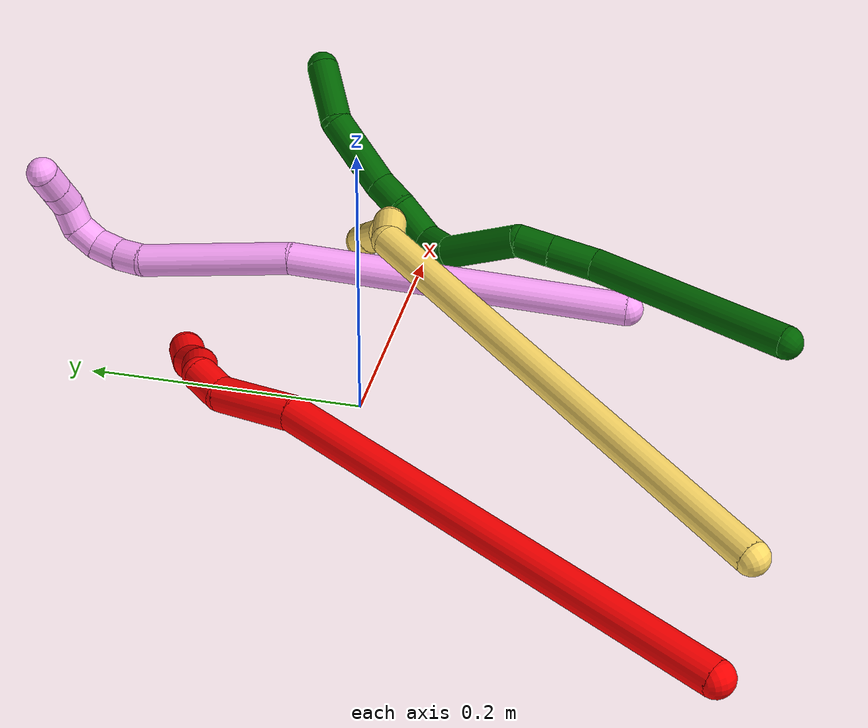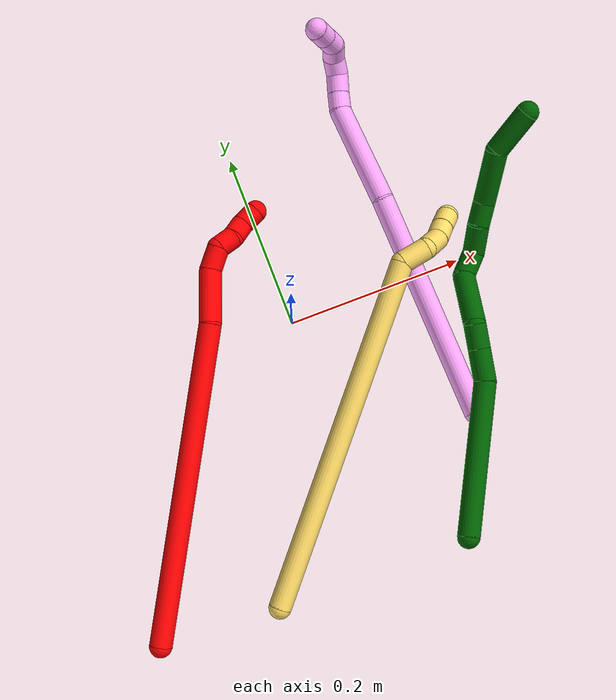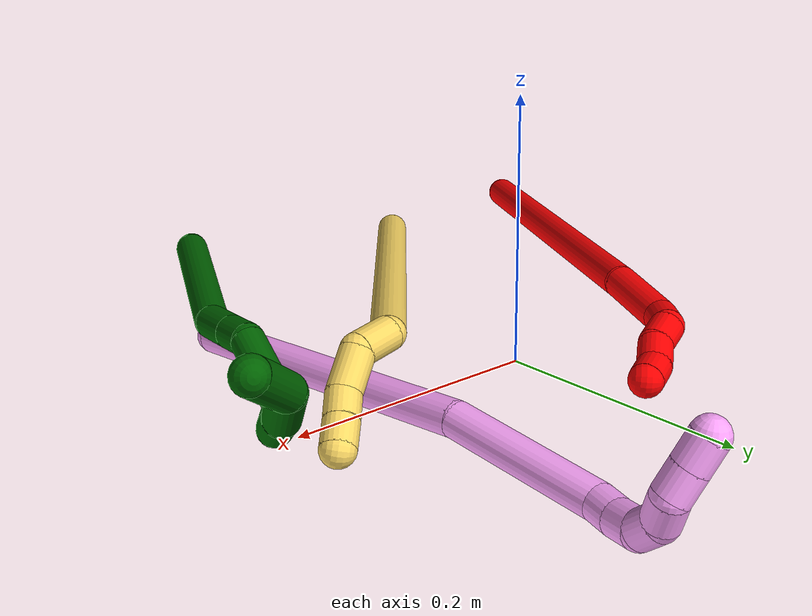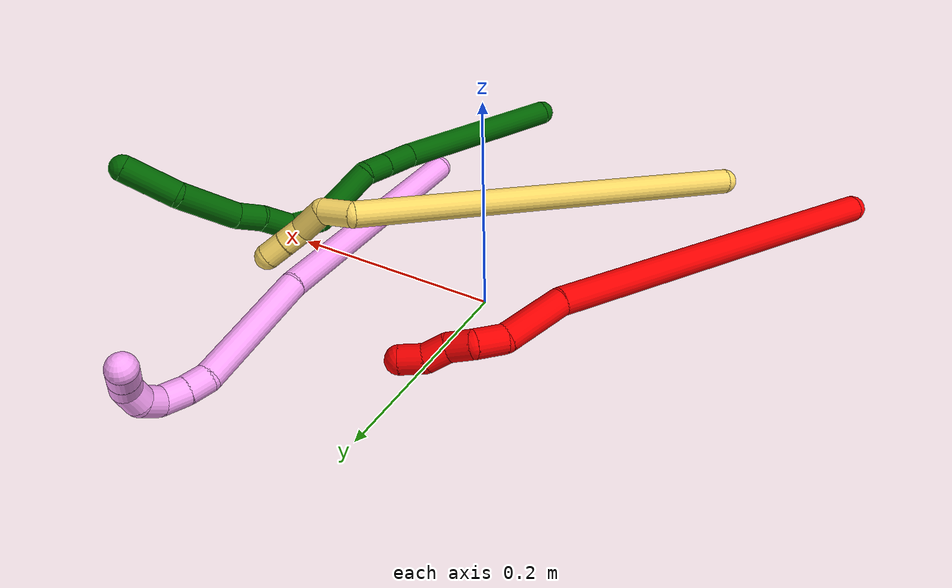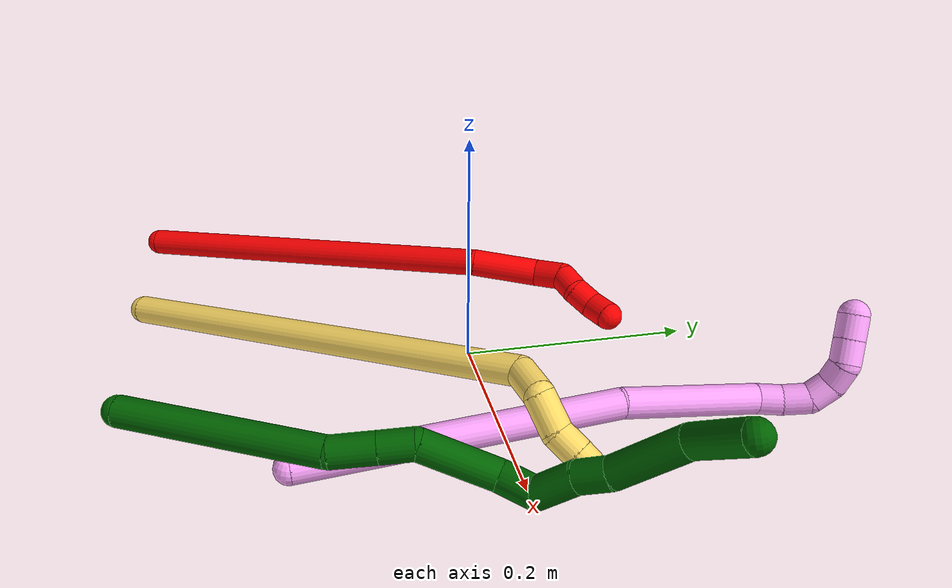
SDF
<sdf version="1.7">
 <world name="default">
  <model name="2">
   <static>0</static>
   <link name="2">
    <collision name="collision-cylinder-e_1_1_4">
     <pose>-0.074435 0.147826 0.055371 -1.2124 -0.440621 0.308054</pose>
     <geometry><cylinder><radius>0.0125</radius><length>0.349051</length></cylinder></geometry>
     <surface>
      <friction><ode><mu>1.16</mu><mu2>1.16</mu2><slip1>0</slip1><slip2>0</slip2></ode></friction>
      <contact><ode><kp>1e+06</kp><kd>1</kd><max_vel>0</max_vel><min_depth>0.001</min_depth></ode></contact>
     </surface>
    </collision>
    <visual name="visual-cylinder-e_1_1_4">
     <pose>-0.074435 0.147826 0.055371 -1.2124 -0.440621 0.308054</pose>
     <geometry><cylinder><radius>0.0125</radius><length>0.349051</length></cylinder></geometry>
     <material><ambient>1 0 0 1</ambient></material>
    </visual>
    <collision name="collision-cylinder-e_2_4_5">
     <pose>-0.165278 0.316811 0.125095 -0.974781 -0.570533 0.308416</pose>
     <geometry><cylinder><radius>0.0125</radius><length>0.060759</length></cylinder></geometry>
     <surface>
      <friction><ode><mu>1.16</mu><mu2>1.16</mu2><slip1>0</slip1><slip2>0</slip2></ode></friction>
      <contact><ode><kp>1e+06</kp><kd>1</kd><max_vel>0</max_vel><min_depth>0.001</min_depth></ode></contact>
     </surface>
    </collision>
    <visual name="visual-cylinder-e_2_4_5">
     <pose>-0.165278 0.316811 0.125095 -0.974781 -0.570533 0.308416</pose>
     <geometry><cylinder><radius>0.0125</radius><length>0.060759</length></cylinder></geometry>
     <material><ambient>1 0 0 1</ambient></material>
    </visual>
    <collision name="collision-cylinder-e_3_5_6">
     <pose>-0.187606 0.349729 0.141307 -1.41392 -0.461476 0.396106</pose>
     <geometry><cylinder><radius>0.0125</radius><length>0.026592</length></cylinder></geometry>
     <surface>
      <friction><ode><mu>1.16</mu><mu2>1.16</mu2><slip1>0</slip1><slip2>0</slip2></ode></friction>
      <contact><ode><kp>1e+06</kp><kd>1</kd><max_vel>0</max_vel><min_depth>0.001</min_depth></ode></contact>
     </surface>
    </collision>
    <visual name="visual-cylinder-e_3_5_6">
     <pose>-0.187606 0.349729 0.141307 -1.41392 -0.461476 0.396106</pose>
     <geometry><cylinder><radius>0.0125</radius><length>0.026592</length></cylinder></geometry>
     <material><ambient>1 0 0 1</ambient></material>
    </visual>
    <collision name="collision-cylinder-e_4_6_7">
     <pose>-0.201305 0.367821 0.139267 -2.12284 -0.807905 1.30646</pose>
     <geometry><cylinder><radius>0.0125</radius><length>0.021525</length></cylinder></geometry>
     <surface>
      <friction><ode><mu>1.16</mu><mu2>1.16</mu2><slip1>0</slip1><slip2>0</slip2></ode></friction>
      <contact><ode><kp>1e+06</kp><kd>1</kd><max_vel>0</max_vel><min_depth>0.001</min_depth></ode></contact>
     </surface>
    </collision>
    <visual name="visual-cylinder-e_4_6_7">
     <pose>-0.201305 0.367821 0.139267 -2.12284 -0.807905 1.30646</pose>
     <geometry><cylinder><radius>0.0125</radius><length>0.021525</length></cylinder></geometry>
     <material><ambient>1 0 0 1</ambient></material>
    </visual>
    <collision name="collision-cylinder-e_5_7_8">
     <pose>-0.217928 0.379831 0.135124 -1.61357 -0.999604 1.03601</pose>
     <geometry><cylinder><radius>0.0125</radius><length>0.021024</length></cylinder></geometry>
     <surface>
      <friction><ode><mu>1.16</mu><mu2>1.16</mu2><slip1>0</slip1><slip2>0</slip2></ode></friction>
      <contact><ode><kp>1e+06</kp><kd>1</kd><max_vel>0</max_vel><min_depth>0.001</min_depth></ode></contact>
     </surface>
    </collision>
    <visual name="visual-cylinder-e_5_7_8">
     <pose>-0.217928 0.379831 0.135124 -1.61357 -0.999604 1.03601</pose>
     <geometry><cylinder><radius>0.0125</radius><length>0.021024</length></cylinder></geometry>
     <material><ambient>1 0 0 1</ambient></material>
    </visual>
    <collision name="collision-cylinder-e_6_8_2">
     <pose>-0.233135 0.393361 0.131944 -1.92869 -0.649242 0.903396</pose>
     <geometry><cylinder><radius>0.0125</radius><length>0.021049</length></cylinder></geometry>
     <surface>
      <friction><ode><mu>1.16</mu><mu2>1.16</mu2><slip1>0</slip1><slip2>0</slip2></ode></friction>
      <contact><ode><kp>1e+06</kp><kd>1</kd><max_vel>0</max_vel><min_depth>0.001</min_depth></ode></contact>
     </surface>
    </collision>
    <visual name="visual-cylinder-e_6_8_2">
     <pose>-0.233135 0.393361 0.131944 -1.92869 -0.649242 0.903396</pose>
     <geometry><cylinder><radius>0.0125</radius><length>0.021049</length></cylinder></geometry>
     <material><ambient>1 0 0 1</ambient></material>
    </visual>
    <collision name="collision-sphere-2">
     <pose>-0.239498 0.401213 0.129007 0 -0 0</pose>
     <geometry><sphere><radius>0.0125</radius></sphere></geometry>
     <surface>
      <friction><ode><mu>1.16</mu><mu2>1.16</mu2><slip1>0</slip1><slip2>0</slip2></ode></friction>
      <contact><ode><kp>1e+06</kp><kd>1</kd><max_vel>0</max_vel><min_depth>0.001</min_depth></ode></contact>
     </surface>
    </collision>
    <visual name="visual-sphere-2">
     <pose>-0.239498 0.401213 0.129007 0 -0 0</pose>
     <geometry><sphere><radius>0.0125</radius></sphere></geometry>
     <material><ambient>1 0 0 1</ambient></material>
    </visual>
    <collision name="collision-sphere-4">
     <pose>-0.148871 0.295652 0.110742 0 -0 0</pose>
     <geometry><sphere><radius>0.0125</radius></sphere></geometry>
     <surface>
      <friction><ode><mu>1.16</mu><mu2>1.16</mu2><slip1>0</slip1><slip2>0</slip2></ode></friction>
      <contact><ode><kp>1e+06</kp><kd>1</kd><max_vel>0</max_vel><min_depth>0.001</min_depth></ode></contact>
     </surface>
    </collision>
    <visual name="visual-sphere-4">
     <pose>-0.148871 0.295652 0.110742 0 -0 0</pose>
     <geometry><sphere><radius>0.0125</radius></sphere></geometry>
     <material><ambient>1 0 0 1</ambient></material>
    </visual>
    <collision name="collision-sphere-1">
     <geometry><sphere><radius>0.0125</radius></sphere></geometry>
     <surface>
      <friction><ode><mu>1.16</mu><mu2>1.16</mu2><slip1>0</slip1><slip2>0</slip2></ode></friction>
      <contact><ode><kp>1e+06</kp><kd>1</kd><max_vel>0</max_vel><min_depth>0.001</min_depth></ode></contact>
     </surface>
    </collision>
    <visual name="visual-sphere-1">
     <geometry><sphere><radius>0.0125</radius></sphere></geometry>
     <material><ambient>1 0 0 1</ambient></material>
    </visual>
    <collision name="collision-sphere-8">
     <pose>-0.226772 0.385509 0.134881 0 -0 0</pose>
     <geometry><sphere><radius>0.0125</radius></sphere></geometry>
     <surface>
      <friction><ode><mu>1.16</mu><mu2>1.16</mu2><slip1>0</slip1><slip2>0</slip2></ode></friction>
      <contact><ode><kp>1e+06</kp><kd>1</kd><max_vel>0</max_vel><min_depth>0.001</min_depth></ode></contact>
     </surface>
    </collision>
    <visual name="visual-sphere-8">
     <pose>-0.226772 0.385509 0.134881 0 -0 0</pose>
     <geometry><sphere><radius>0.0125</radius></sphere></geometry>
     <material><ambient>1 0 0 1</ambient></material>
    </visual>
    <collision name="collision-sphere-5">
     <pose>-0.181685 0.33797 0.139447 0 -0 0</pose>
     <geometry><sphere><radius>0.0125</radius></sphere></geometry>
     <surface>
      <friction><ode><mu>1.16</mu><mu2>1.16</mu2><slip1>0</slip1><slip2>0</slip2></ode></friction>
      <contact><ode><kp>1e+06</kp><kd>1</kd><max_vel>0</max_vel><min_depth>0.001</min_depth></ode></contact>
     </surface>
    </collision>
    <visual name="visual-sphere-5">
     <pose>-0.181685 0.33797 0.139447 0 -0 0</pose>
     <geometry><sphere><radius>0.0125</radius></sphere></geometry>
     <material><ambient>1 0 0 1</ambient></material>
    </visual>
    <collision name="collision-sphere-6">
     <pose>-0.193526 0.361488 0.143167 0 -0 0</pose>
     <geometry><sphere><radius>0.0125</radius></sphere></geometry>
     <surface>
      <friction><ode><mu>1.16</mu><mu2>1.16</mu2><slip1>0</slip1><slip2>0</slip2></ode></friction>
      <contact><ode><kp>1e+06</kp><kd>1</kd><max_vel>0</max_vel><min_depth>0.001</min_depth></ode></contact>
     </surface>
    </collision>
    <visual name="visual-sphere-6">
     <pose>-0.193526 0.361488 0.143167 0 -0 0</pose>
     <geometry><sphere><radius>0.0125</radius></sphere></geometry>
     <material><ambient>1 0 0 1</ambient></material>
    </visual>
    <collision name="collision-sphere-7">
     <pose>-0.209085 0.374153 0.135367 0 -0 0</pose>
     <geometry><sphere><radius>0.0125</radius></sphere></geometry>
     <surface>
      <friction><ode><mu>1.16</mu><mu2>1.16</mu2><slip1>0</slip1><slip2>0</slip2></ode></friction>
      <contact><ode><kp>1e+06</kp><kd>1</kd><max_vel>0</max_vel><min_depth>0.001</min_depth></ode></contact>
     </surface>
    </collision>
    <visual name="visual-sphere-7">
     <pose>-0.209085 0.374153 0.135367 0 -0 0</pose>
     <geometry><sphere><radius>0.0125</radius></sphere></geometry>
     <material><ambient>1 0 0 1</ambient></material>
    </visual>
    <inertial>
     <pose>-0.10967 0.208662 0.078603 0 -0 0</pose>
     <mass>0.5</mass>
     <inertia>
      <ixx>0.004053</ixx>
      <ixy>0</ixy>
      <ixz>0</ixz>
      <iyy>0.002653</iyy>
      <iyz>0</iyz>
      <izz>-0.00149</izz>
     </inertia>
    </inertial>
   </link>
   <pose>-0.255935 -0.279669 0.023231 1.6596 -1.01049 -2.48476</pose>
  </model>
  <model name="4">
   <static>0</static>
   <link name="4">
    <collision name="collision-cylinder-e_1_1_4">
     <pose>0.003866 0.126649 0.025526 -1.37191 0.029917 -0.02449</pose>
     <geometry><cylinder><radius>0.0125</radius><length>0.258508</length></cylinder></geometry>
     <surface>
      <friction><ode><mu>1.16</mu><mu2>1.16</mu2><slip1>0</slip1><slip2>0</slip2></ode></friction>
      <contact><ode><kp>1e+06</kp><kd>1</kd><max_vel>0</max_vel><min_depth>0.001</min_depth></ode></contact>
     </surface>
    </collision>
    <visual name="visual-cylinder-e_1_1_4">
     <pose>0.003866 0.126649 0.025526 -1.37191 0.029917 -0.02449</pose>
     <geometry><cylinder><radius>0.0125</radius><length>0.258508</length></cylinder></geometry>
     <material><ambient>1 0.65098 0.996078 1</ambient></material>
    </visual>
    <collision name="collision-cylinder-e_2_4_5">
     <pose>0.008358 0.312433 0.051976 -1.55517 0.010567 -0.010403</pose>
     <geometry><cylinder><radius>0.0125</radius><length>0.11829</length></cylinder></geometry>
     <surface>
      <friction><ode><mu>1.16</mu><mu2>1.16</mu2><slip1>0</slip1><slip2>0</slip2></ode></friction>
      <contact><ode><kp>1e+06</kp><kd>1</kd><max_vel>0</max_vel><min_depth>0.001</min_depth></ode></contact>
     </surface>
    </collision>
    <visual name="visual-cylinder-e_2_4_5">
     <pose>0.008358 0.312433 0.051976 -1.55517 0.010567 -0.010403</pose>
     <geometry><cylinder><radius>0.0125</radius><length>0.11829</length></cylinder></geometry>
     <material><ambient>1 0.65098 0.996078 1</ambient></material>
    </visual>
    <collision name="collision-cylinder-e_3_5_6">
     <pose>0.012229 0.381315 0.053754 -1.48337 0.32032 -0.293874</pose>
     <geometry><cylinder><radius>0.0125</radius><length>0.020618</length></cylinder></geometry>
     <surface>
      <friction><ode><mu>1.16</mu><mu2>1.16</mu2><slip1>0</slip1><slip2>0</slip2></ode></friction>
      <contact><ode><kp>1e+06</kp><kd>1</kd><max_vel>0</max_vel><min_depth>0.001</min_depth></ode></contact>
     </surface>
    </collision>
    <visual name="visual-cylinder-e_3_5_6">
     <pose>0.012229 0.381315 0.053754 -1.48337 0.32032 -0.293874</pose>
     <geometry><cylinder><radius>0.0125</radius><length>0.020618</length></cylinder></geometry>
     <material><ambient>1 0.65098 0.996078 1</ambient></material>
    </visual>
    <collision name="collision-cylinder-e_4_6_7">
     <pose>0.019523 0.401189 0.05723 -1.31746 0.369221 -0.287107</pose>
     <geometry><cylinder><radius>0.0125</radius><length>0.022433</length></cylinder></geometry>
     <surface>
      <friction><ode><mu>1.16</mu><mu2>1.16</mu2><slip1>0</slip1><slip2>0</slip2></ode></friction>
      <contact><ode><kp>1e+06</kp><kd>1</kd><max_vel>0</max_vel><min_depth>0.001</min_depth></ode></contact>
     </surface>
    </collision>
    <visual name="visual-cylinder-e_4_6_7">
     <pose>0.019523 0.401189 0.05723 -1.31746 0.369221 -0.287107</pose>
     <geometry><cylinder><radius>0.0125</radius><length>0.022433</length></cylinder></geometry>
     <material><ambient>1 0.65098 0.996078 1</ambient></material>
    </visual>
    <collision name="collision-cylinder-e_5_7_8">
     <pose>0.025282 0.418242 0.06694 -0.773861 0.171002 -0.06982</pose>
     <geometry><cylinder><radius>0.0125</radius><length>0.020114</length></cylinder></geometry>
     <surface>
      <friction><ode><mu>1.16</mu><mu2>1.16</mu2><slip1>0</slip1><slip2>0</slip2></ode></friction>
      <contact><ode><kp>1e+06</kp><kd>1</kd><max_vel>0</max_vel><min_depth>0.001</min_depth></ode></contact>
     </surface>
    </collision>
    <visual name="visual-cylinder-e_5_7_8">
     <pose>0.025282 0.418242 0.06694 -0.773861 0.171002 -0.06982</pose>
     <geometry><cylinder><radius>0.0125</radius><length>0.020114</length></cylinder></geometry>
     <material><ambient>1 0.65098 0.996078 1</ambient></material>
    </visual>
    <collision name="collision-cylinder-e_6_8_9">
     <pose>0.028938 0.42747 0.08358 -0.23644 0.195409 -0.023283</pose>
     <geometry><cylinder><radius>0.0125</radius><length>0.020033</length></cylinder></geometry>
     <surface>
      <friction><ode><mu>1.16</mu><mu2>1.16</mu2><slip1>0</slip1><slip2>0</slip2></ode></friction>
      <contact><ode><kp>1e+06</kp><kd>1</kd><max_vel>0</max_vel><min_depth>0.001</min_depth></ode></contact>
     </surface>
    </collision>
    <visual name="visual-cylinder-e_6_8_9">
     <pose>0.028938 0.42747 0.08358 -0.23644 0.195409 -0.023283</pose>
     <geometry><cylinder><radius>0.0125</radius><length>0.020033</length></cylinder></geometry>
     <material><ambient>1 0.65098 0.996078 1</ambient></material>
    </visual>
    <collision name="collision-cylinder-e_7_9_10">
     <pose>0.027611 0.43153 0.102419 -0.187176 -0.333339 0.031578</pose>
     <geometry><cylinder><radius>0.0125</radius><length>0.020003</length></cylinder></geometry>
     <surface>
      <friction><ode><mu>1.16</mu><mu2>1.16</mu2><slip1>0</slip1><slip2>0</slip2></ode></friction>
      <contact><ode><kp>1e+06</kp><kd>1</kd><max_vel>0</max_vel><min_depth>0.001</min_depth></ode></contact>
     </surface>
    </collision>
    <visual name="visual-cylinder-e_7_9_10">
     <pose>0.027611 0.43153 0.102419 -0.187176 -0.333339 0.031578</pose>
     <geometry><cylinder><radius>0.0125</radius><length>0.020003</length></cylinder></geometry>
     <material><ambient>1 0.65098 0.996078 1</ambient></material>
    </visual>
    <collision name="collision-cylinder-e_8_10_2">
     <pose>0.021098 0.435046 0.121001 -0.186802 -0.329932 0.031187</pose>
     <geometry><cylinder><radius>0.0125</radius><length>0.020002</length></cylinder></geometry>
     <surface>
      <friction><ode><mu>1.16</mu><mu2>1.16</mu2><slip1>0</slip1><slip2>0</slip2></ode></friction>
      <contact><ode><kp>1e+06</kp><kd>1</kd><max_vel>0</max_vel><min_depth>0.001</min_depth></ode></contact>
     </surface>
    </collision>
    <visual name="visual-cylinder-e_8_10_2">
     <pose>0.021098 0.435046 0.121001 -0.186802 -0.329932 0.031187</pose>
     <geometry><cylinder><radius>0.0125</radius><length>0.020002</length></cylinder></geometry>
     <material><ambient>1 0.65098 0.996078 1</ambient></material>
    </visual>
    <collision name="collision-sphere-2">
     <pose>0.017858 0.436803 0.130298 0 -0 0</pose>
     <geometry><sphere><radius>0.0125</radius></sphere></geometry>
     <surface>
      <friction><ode><mu>1.16</mu><mu2>1.16</mu2><slip1>0</slip1><slip2>0</slip2></ode></friction>
      <contact><ode><kp>1e+06</kp><kd>1</kd><max_vel>0</max_vel><min_depth>0.001</min_depth></ode></contact>
     </surface>
    </collision>
    <visual name="visual-sphere-2">
     <pose>0.017858 0.436803 0.130298 0 -0 0</pose>
     <geometry><sphere><radius>0.0125</radius></sphere></geometry>
     <material><ambient>1 0.65098 0.996078 1</ambient></material>
    </visual>
    <collision name="collision-sphere-10">
     <pose>0.024338 0.433289 0.111705 0 -0 0</pose>
     <geometry><sphere><radius>0.0125</radius></sphere></geometry>
     <surface>
      <friction><ode><mu>1.16</mu><mu2>1.16</mu2><slip1>0</slip1><slip2>0</slip2></ode></friction>
      <contact><ode><kp>1e+06</kp><kd>1</kd><max_vel>0</max_vel><min_depth>0.001</min_depth></ode></contact>
     </surface>
    </collision>
    <visual name="visual-sphere-10">
     <pose>0.024338 0.433289 0.111705 0 -0 0</pose>
     <geometry><sphere><radius>0.0125</radius></sphere></geometry>
     <material><ambient>1 0.65098 0.996078 1</ambient></material>
    </visual>
    <collision name="collision-sphere-9">
     <pose>0.030883 0.429771 0.093133 0 -0 0</pose>
     <geometry><sphere><radius>0.0125</radius></sphere></geometry>
     <surface>
      <friction><ode><mu>1.16</mu><mu2>1.16</mu2><slip1>0</slip1><slip2>0</slip2></ode></friction>
      <contact><ode><kp>1e+06</kp><kd>1</kd><max_vel>0</max_vel><min_depth>0.001</min_depth></ode></contact>
     </surface>
    </collision>
    <visual name="visual-sphere-9">
     <pose>0.030883 0.429771 0.093133 0 -0 0</pose>
     <geometry><sphere><radius>0.0125</radius></sphere></geometry>
     <material><ambient>1 0.65098 0.996078 1</ambient></material>
    </visual>
    <collision name="collision-sphere-4">
     <pose>0.007733 0.253299 0.051051 0 -0 0</pose>
     <geometry><sphere><radius>0.0125</radius></sphere></geometry>
     <surface>
      <friction><ode><mu>1.16</mu><mu2>1.16</mu2><slip1>0</slip1><slip2>0</slip2></ode></friction>
      <contact><ode><kp>1e+06</kp><kd>1</kd><max_vel>0</max_vel><min_depth>0.001</min_depth></ode></contact>
     </surface>
    </collision>
    <visual name="visual-sphere-4">
     <pose>0.007733 0.253299 0.051051 0 -0 0</pose>
     <geometry><sphere><radius>0.0125</radius></sphere></geometry>
     <material><ambient>1 0.65098 0.996078 1</ambient></material>
    </visual>
    <collision name="collision-sphere-1">
     <geometry><sphere><radius>0.0125</radius></sphere></geometry>
     <surface>
      <friction><ode><mu>1.16</mu><mu2>1.16</mu2><slip1>0</slip1><slip2>0</slip2></ode></friction>
      <contact><ode><kp>1e+06</kp><kd>1</kd><max_vel>0</max_vel><min_depth>0.001</min_depth></ode></contact>
     </surface>
    </collision>
    <visual name="visual-sphere-1">
     <geometry><sphere><radius>0.0125</radius></sphere></geometry>
     <material><ambient>1 0.65098 0.996078 1</ambient></material>
    </visual>
    <collision name="collision-sphere-8">
     <pose>0.026993 0.425168 0.074028 0 -0 0</pose>
     <geometry><sphere><radius>0.0125</radius></sphere></geometry>
     <surface>
      <friction><ode><mu>1.16</mu><mu2>1.16</mu2><slip1>0</slip1><slip2>0</slip2></ode></friction>
      <contact><ode><kp>1e+06</kp><kd>1</kd><max_vel>0</max_vel><min_depth>0.001</min_depth></ode></contact>
     </surface>
    </collision>
    <visual name="visual-sphere-8">
     <pose>0.026993 0.425168 0.074028 0 -0 0</pose>
     <geometry><sphere><radius>0.0125</radius></sphere></geometry>
     <material><ambient>1 0.65098 0.996078 1</ambient></material>
    </visual>
    <collision name="collision-sphere-5">
     <pose>0.008983 0.371568 0.0529 0 -0 0</pose>
     <geometry><sphere><radius>0.0125</radius></sphere></geometry>
     <surface>
      <friction><ode><mu>1.16</mu><mu2>1.16</mu2><slip1>0</slip1><slip2>0</slip2></ode></friction>
      <contact><ode><kp>1e+06</kp><kd>1</kd><max_vel>0</max_vel><min_depth>0.001</min_depth></ode></contact>
     </surface>
    </collision>
    <visual name="visual-sphere-5">
     <pose>0.008983 0.371568 0.0529 0 -0 0</pose>
     <geometry><sphere><radius>0.0125</radius></sphere></geometry>
     <material><ambient>1 0.65098 0.996078 1</ambient></material>
    </visual>
    <collision name="collision-sphere-6">
     <pose>0.015475 0.391062 0.054609 0 -0 0</pose>
     <geometry><sphere><radius>0.0125</radius></sphere></geometry>
     <surface>
      <friction><ode><mu>1.16</mu><mu2>1.16</mu2><slip1>0</slip1><slip2>0</slip2></ode></friction>
      <contact><ode><kp>1e+06</kp><kd>1</kd><max_vel>0</max_vel><min_depth>0.001</min_depth></ode></contact>
     </surface>
    </collision>
    <visual name="visual-sphere-6">
     <pose>0.015475 0.391062 0.054609 0 -0 0</pose>
     <geometry><sphere><radius>0.0125</radius></sphere></geometry>
     <material><ambient>1 0.65098 0.996078 1</ambient></material>
    </visual>
    <collision name="collision-sphere-7">
     <pose>0.02357 0.411316 0.059852 0 -0 0</pose>
     <geometry><sphere><radius>0.0125</radius></sphere></geometry>
     <surface>
      <friction><ode><mu>1.16</mu><mu2>1.16</mu2><slip1>0</slip1><slip2>0</slip2></ode></friction>
      <contact><ode><kp>1e+06</kp><kd>1</kd><max_vel>0</max_vel><min_depth>0.001</min_depth></ode></contact>
     </surface>
    </collision>
    <visual name="visual-sphere-7">
     <pose>0.02357 0.411316 0.059852 0 -0 0</pose>
     <geometry><sphere><radius>0.0125</radius></sphere></geometry>
     <material><ambient>1 0.65098 0.996078 1</ambient></material>
    </visual>
    <inertial>
     <pose>0.009481 0.241738 0.045257 0 -0 0</pose>
     <mass>0.5</mass>
     <inertia>
      <ixx>0.001563</ixx>
      <ixy>0</ixy>
      <ixz>0</ixz>
      <iyy>0.000292</iyy>
      <iyz>0</iyz>
      <izz>-0.001603</izz>
     </inertia>
    </inertial>
   </link>
   <pose>0.153509 -0.166939 0.011497 -0.141828 -0.078455 0.065009</pose>
  </model>
  <model name="5">
   <static>0</static>
   <link name="5">
    <collision name="collision-cylinder-e_1_1_4">
     <pose>0.183851 0.074028 0.003775 -1.51984 1.18755 -1.14074</pose>
     <geometry><cylinder><radius>0.0125</radius><length>0.396462</length></cylinder></geometry>
     <surface>
      <friction><ode><mu>1.16</mu><mu2>1.16</mu2><slip1>0</slip1><slip2>0</slip2></ode></friction>
      <contact><ode><kp>1e+06</kp><kd>1</kd><max_vel>0</max_vel><min_depth>0.001</min_depth></ode></contact>
     </surface>
    </collision>
    <visual name="visual-cylinder-e_1_1_4">
     <pose>0.183851 0.074028 0.003775 -1.51984 1.18755 -1.14074</pose>
     <geometry><cylinder><radius>0.0125</radius><length>0.396462</length></cylinder></geometry>
     <material><ambient>1 0.858824 0.4 1</ambient></material>
    </visual>
    <collision name="collision-cylinder-e_2_4_5">
     <pose>0.380064 0.148408 0.016866 -0.037719 0.924693 -0.0188</pose>
     <geometry><cylinder><radius>0.0125</radius><length>0.030967</length></cylinder></geometry>
     <surface>
      <friction><ode><mu>1.16</mu><mu2>1.16</mu2><slip1>0</slip1><slip2>0</slip2></ode></friction>
      <contact><ode><kp>1e+06</kp><kd>1</kd><max_vel>0</max_vel><min_depth>0.001</min_depth></ode></contact>
     </surface>
    </collision>
    <visual name="visual-cylinder-e_2_4_5">
     <pose>0.380064 0.148408 0.016866 -0.037719 0.924693 -0.0188</pose>
     <geometry><cylinder><radius>0.0125</radius><length>0.030967</length></cylinder></geometry>
     <material><ambient>1 0.858824 0.4 1</ambient></material>
    </visual>
    <collision name="collision-cylinder-e_3_5_6">
     <pose>0.404909 0.140217 0.028724 1.28157 0.950714 0.733036</pose>
     <geometry><cylinder><radius>0.0125</radius><length>0.030675</length></cylinder></geometry>
     <surface>
      <friction><ode><mu>1.16</mu><mu2>1.16</mu2><slip1>0</slip1><slip2>0</slip2></ode></friction>
      <contact><ode><kp>1e+06</kp><kd>1</kd><max_vel>0</max_vel><min_depth>0.001</min_depth></ode></contact>
     </surface>
    </collision>
    <visual name="visual-cylinder-e_3_5_6">
     <pose>0.404909 0.140217 0.028724 1.28157 0.950714 0.733036</pose>
     <geometry><cylinder><radius>0.0125</radius><length>0.030675</length></cylinder></geometry>
     <material><ambient>1 0.858824 0.4 1</ambient></material>
    </visual>
    <collision name="collision-cylinder-e_4_6_7">
     <pose>0.427288 0.128366 0.030793 1.71274 1.24506 1.38268</pose>
     <geometry><cylinder><radius>0.0125</radius><length>0.020893</length></cylinder></geometry>
     <surface>
      <friction><ode><mu>1.16</mu><mu2>1.16</mu2><slip1>0</slip1><slip2>0</slip2></ode></friction>
      <contact><ode><kp>1e+06</kp><kd>1</kd><max_vel>0</max_vel><min_depth>0.001</min_depth></ode></contact>
     </surface>
    </collision>
    <visual name="visual-cylinder-e_4_6_7">
     <pose>0.427288 0.128366 0.030793 1.71274 1.24506 1.38268</pose>
     <geometry><cylinder><radius>0.0125</radius><length>0.020893</length></cylinder></geometry>
     <material><ambient>1 0.858824 0.4 1</ambient></material>
    </visual>
    <collision name="collision-cylinder-e_5_7_2">
     <pose>0.447051 0.121461 0.030155 1.61666 1.22099 1.26442</pose>
     <geometry><cylinder><radius>0.0125</radius><length>0.021003</length></cylinder></geometry>
     <surface>
      <friction><ode><mu>1.16</mu><mu2>1.16</mu2><slip1>0</slip1><slip2>0</slip2></ode></friction>
      <contact><ode><kp>1e+06</kp><kd>1</kd><max_vel>0</max_vel><min_depth>0.001</min_depth></ode></contact>
     </surface>
    </collision>
    <visual name="visual-cylinder-e_5_7_2">
     <pose>0.447051 0.121461 0.030155 1.61666 1.22099 1.26442</pose>
     <geometry><cylinder><radius>0.0125</radius><length>0.021003</length></cylinder></geometry>
     <material><ambient>1 0.858824 0.4 1</ambient></material>
    </visual>
    <collision name="collision-sphere-2">
     <pose>0.456916 0.117866 0.02999 0 -0 0</pose>
     <geometry><sphere><radius>0.0125</radius></sphere></geometry>
     <surface>
      <friction><ode><mu>1.16</mu><mu2>1.16</mu2><slip1>0</slip1><slip2>0</slip2></ode></friction>
      <contact><ode><kp>1e+06</kp><kd>1</kd><max_vel>0</max_vel><min_depth>0.001</min_depth></ode></contact>
     </surface>
    </collision>
    <visual name="visual-sphere-2">
     <pose>0.456916 0.117866 0.02999 0 -0 0</pose>
     <geometry><sphere><radius>0.0125</radius></sphere></geometry>
     <material><ambient>1 0.858824 0.4 1</ambient></material>
    </visual>
    <collision name="collision-sphere-7">
     <pose>0.437185 0.125056 0.03032 0 -0 0</pose>
     <geometry><sphere><radius>0.0125</radius></sphere></geometry>
     <surface>
      <friction><ode><mu>1.16</mu><mu2>1.16</mu2><slip1>0</slip1><slip2>0</slip2></ode></friction>
      <contact><ode><kp>1e+06</kp><kd>1</kd><max_vel>0</max_vel><min_depth>0.001</min_depth></ode></contact>
     </surface>
    </collision>
    <visual name="visual-sphere-7">
     <pose>0.437185 0.125056 0.03032 0 -0 0</pose>
     <geometry><sphere><radius>0.0125</radius></sphere></geometry>
     <material><ambient>1 0.858824 0.4 1</ambient></material>
    </visual>
    <collision name="collision-sphere-6">
     <pose>0.417391 0.131675 0.031266 0 -0 0</pose>
     <geometry><sphere><radius>0.0125</radius></sphere></geometry>
     <surface>
      <friction><ode><mu>1.16</mu><mu2>1.16</mu2><slip1>0</slip1><slip2>0</slip2></ode></friction>
      <contact><ode><kp>1e+06</kp><kd>1</kd><max_vel>0</max_vel><min_depth>0.001</min_depth></ode></contact>
     </surface>
    </collision>
    <visual name="visual-sphere-6">
     <pose>0.417391 0.131675 0.031266 0 -0 0</pose>
     <geometry><sphere><radius>0.0125</radius></sphere></geometry>
     <material><ambient>1 0.858824 0.4 1</ambient></material>
    </visual>
    <collision name="collision-sphere-5">
     <pose>0.392427 0.14876 0.026182 0 -0 0</pose>
     <geometry><sphere><radius>0.0125</radius></sphere></geometry>
     <surface>
      <friction><ode><mu>1.16</mu><mu2>1.16</mu2><slip1>0</slip1><slip2>0</slip2></ode></friction>
      <contact><ode><kp>1e+06</kp><kd>1</kd><max_vel>0</max_vel><min_depth>0.001</min_depth></ode></contact>
     </surface>
    </collision>
    <visual name="visual-sphere-5">
     <pose>0.392427 0.14876 0.026182 0 -0 0</pose>
     <geometry><sphere><radius>0.0125</radius></sphere></geometry>
     <material><ambient>1 0.858824 0.4 1</ambient></material>
    </visual>
    <collision name="collision-sphere-1">
     <geometry><sphere><radius>0.0125</radius></sphere></geometry>
     <surface>
      <friction><ode><mu>1.16</mu><mu2>1.16</mu2><slip1>0</slip1><slip2>0</slip2></ode></friction>
      <contact><ode><kp>1e+06</kp><kd>1</kd><max_vel>0</max_vel><min_depth>0.001</min_depth></ode></contact>
     </surface>
    </collision>
    <visual name="visual-sphere-1">
     <geometry><sphere><radius>0.0125</radius></sphere></geometry>
     <material><ambient>1 0.858824 0.4 1</ambient></material>
    </visual>
    <collision name="collision-sphere-4">
     <pose>0.367701 0.148057 0.00755 0 -0 0</pose>
     <geometry><sphere><radius>0.0125</radius></sphere></geometry>
     <surface>
      <friction><ode><mu>1.16</mu><mu2>1.16</mu2><slip1>0</slip1><slip2>0</slip2></ode></friction>
      <contact><ode><kp>1e+06</kp><kd>1</kd><max_vel>0</max_vel><min_depth>0.001</min_depth></ode></contact>
     </surface>
    </collision>
    <visual name="visual-sphere-4">
     <pose>0.367701 0.148057 0.00755 0 -0 0</pose>
     <geometry><sphere><radius>0.0125</radius></sphere></geometry>
     <material><ambient>1 0.858824 0.4 1</ambient></material>
    </visual>
    <inertial>
     <pose>0.230793 0.086959 0.008354 0 -0 0</pose>
     <mass>0.5</mass>
     <inertia>
      <ixx>-0.000916</ixx>
      <ixy>0</ixy>
      <ixz>0</ixz>
      <iyy>0.002746</iyy>
      <iyz>0</iyz>
      <izz>-0.006779</izz>
     </inertia>
    </inertial>
   </link>
   <pose>-0.12311 -0.28816 0.011777 1.39373 0.260093 0.817591</pose>
  </model>
  <model name="6">
   <static>0</static>
   <link name="6">
    <collision name="collision-cylinder-e_1_1_4">
     <pose>0.020333 0.01348 0.080743 -0.16542 0.243456 -0.020282</pose>
     <geometry><cylinder><radius>0.0125</radius><length>0.168696</length></cylinder></geometry>
     <surface>
      <friction><ode><mu>1.16</mu><mu2>1.16</mu2><slip1>0</slip1><slip2>0</slip2></ode></friction>
      <contact><ode><kp>1e+06</kp><kd>1</kd><max_vel>0</max_vel><min_depth>0.001</min_depth></ode></contact>
     </surface>
    </collision>
    <visual name="visual-cylinder-e_1_1_4">
     <pose>0.020333 0.01348 0.080743 -0.16542 0.243456 -0.020282</pose>
     <geometry><cylinder><radius>0.0125</radius><length>0.168696</length></cylinder></geometry>
     <material><ambient>0 0.392157 0.003922 1</ambient></material>
    </visual>
    <collision name="collision-cylinder-e_2_4_5">
     <pose>0.039588 0.031985 0.178695 -0.284124 -0.060014 0.008586</pose>
     <geometry><cylinder><radius>0.0125</radius><length>0.035919</length></cylinder></geometry>
     <surface>
      <friction><ode><mu>1.16</mu><mu2>1.16</mu2><slip1>0</slip1><slip2>0</slip2></ode></friction>
      <contact><ode><kp>1e+06</kp><kd>1</kd><max_vel>0</max_vel><min_depth>0.001</min_depth></ode></contact>
     </surface>
    </collision>
    <visual name="visual-cylinder-e_2_4_5">
     <pose>0.039588 0.031985 0.178695 -0.284124 -0.060014 0.008586</pose>
     <geometry><cylinder><radius>0.0125</radius><length>0.035919</length></cylinder></geometry>
     <material><ambient>0 0.392157 0.003922 1</ambient></material>
    </visual>
    <collision name="collision-cylinder-e_3_5_6">
     <pose>0.037635 0.040768 0.209043 -0.278553 -0.064003 0.008975</pose>
     <geometry><cylinder><radius>0.0125</radius><length>0.027389</length></cylinder></geometry>
     <surface>
      <friction><ode><mu>1.16</mu><mu2>1.16</mu2><slip1>0</slip1><slip2>0</slip2></ode></friction>
      <contact><ode><kp>1e+06</kp><kd>1</kd><max_vel>0</max_vel><min_depth>0.001</min_depth></ode></contact>
     </surface>
    </collision>
    <visual name="visual-cylinder-e_3_5_6">
     <pose>0.037635 0.040768 0.209043 -0.278553 -0.064003 0.008975</pose>
     <geometry><cylinder><radius>0.0125</radius><length>0.027389</length></cylinder></geometry>
     <material><ambient>0 0.392157 0.003922 1</ambient></material>
    </visual>
    <collision name="collision-cylinder-e_4_6_7">
     <pose>0.04689 0.063075 0.246712 -0.647475 0.318215 -0.107581</pose>
     <geometry><cylinder><radius>0.0125</radius><length>0.064759</length></cylinder></geometry>
     <surface>
      <friction><ode><mu>1.16</mu><mu2>1.16</mu2><slip1>0</slip1><slip2>0</slip2></ode></friction>
      <contact><ode><kp>1e+06</kp><kd>1</kd><max_vel>0</max_vel><min_depth>0.001</min_depth></ode></contact>
     </surface>
    </collision>
    <visual name="visual-cylinder-e_4_6_7">
     <pose>0.04689 0.063075 0.246712 -0.647475 0.318215 -0.107581</pose>
     <geometry><cylinder><radius>0.0125</radius><length>0.064759</length></cylinder></geometry>
     <material><ambient>0 0.392157 0.003922 1</ambient></material>
    </visual>
    <collision name="collision-cylinder-e_5_7_8">
     <pose>0.064315 0.081905 0.284167 -0.021602 0.513698 -0.005674</pose>
     <geometry><cylinder><radius>0.0125</radius><length>0.02969</length></cylinder></geometry>
     <surface>
      <friction><ode><mu>1.16</mu><mu2>1.16</mu2><slip1>0</slip1><slip2>0</slip2></ode></friction>
      <contact><ode><kp>1e+06</kp><kd>1</kd><max_vel>0</max_vel><min_depth>0.001</min_depth></ode></contact>
     </surface>
    </collision>
    <visual name="visual-cylinder-e_5_7_8">
     <pose>0.064315 0.081905 0.284167 -0.021602 0.513698 -0.005674</pose>
     <geometry><cylinder><radius>0.0125</radius><length>0.02969</length></cylinder></geometry>
     <material><ambient>0 0.392157 0.003922 1</ambient></material>
    </visual>
    <collision name="collision-cylinder-e_6_8_9">
     <pose>0.06799 0.077429 0.313173 0.287519 -0.212632 -0.030894</pose>
     <geometry><cylinder><radius>0.0125</radius><length>0.034309</length></cylinder></geometry>
     <surface>
      <friction><ode><mu>1.16</mu><mu2>1.16</mu2><slip1>0</slip1><slip2>0</slip2></ode></friction>
      <contact><ode><kp>1e+06</kp><kd>1</kd><max_vel>0</max_vel><min_depth>0.001</min_depth></ode></contact>
     </surface>
    </collision>
    <visual name="visual-cylinder-e_6_8_9">
     <pose>0.06799 0.077429 0.313173 0.287519 -0.212632 -0.030894</pose>
     <geometry><cylinder><radius>0.0125</radius><length>0.034309</length></cylinder></geometry>
     <material><ambient>0 0.392157 0.003922 1</ambient></material>
    </visual>
    <collision name="collision-cylinder-e_7_9_10">
     <pose>0.064524 0.070122 0.341913 0.198887 0.011962 0.001194</pose>
     <geometry><cylinder><radius>0.0125</radius><length>0.025832</length></cylinder></geometry>
     <surface>
      <friction><ode><mu>1.16</mu><mu2>1.16</mu2><slip1>0</slip1><slip2>0</slip2></ode></friction>
      <contact><ode><kp>1e+06</kp><kd>1</kd><max_vel>0</max_vel><min_depth>0.001</min_depth></ode></contact>
     </surface>
    </collision>
    <visual name="visual-cylinder-e_7_9_10">
     <pose>0.064524 0.070122 0.341913 0.198887 0.011962 0.001194</pose>
     <geometry><cylinder><radius>0.0125</radius><length>0.025832</length></cylinder></geometry>
     <material><ambient>0 0.392157 0.003922 1</ambient></material>
    </visual>
    <collision name="collision-cylinder-e_8_10_11">
     <pose>0.058514 0.057135 0.382811 0.353979 -0.201988 -0.036247</pose>
     <geometry><cylinder><radius>0.0125</radius><length>0.061458</length></cylinder></geometry>
     <surface>
      <friction><ode><mu>1.16</mu><mu2>1.16</mu2><slip1>0</slip1><slip2>0</slip2></ode></friction>
      <contact><ode><kp>1e+06</kp><kd>1</kd><max_vel>0</max_vel><min_depth>0.001</min_depth></ode></contact>
     </surface>
    </collision>
    <visual name="visual-cylinder-e_8_10_11">
     <pose>0.058514 0.057135 0.382811 0.353979 -0.201988 -0.036247</pose>
     <geometry><cylinder><radius>0.0125</radius><length>0.061458</length></cylinder></geometry>
     <material><ambient>0 0.392157 0.003922 1</ambient></material>
    </visual>
    <collision name="collision-cylinder-e_9_11_2">
     <pose>0.055956 0.031327 0.431673 0.640576 0.139311 0.046277</pose>
     <geometry><cylinder><radius>0.0125</radius><length>0.051949</length></cylinder></geometry>
     <surface>
      <friction><ode><mu>1.16</mu><mu2>1.16</mu2><slip1>0</slip1><slip2>0</slip2></ode></friction>
      <contact><ode><kp>1e+06</kp><kd>1</kd><max_vel>0</max_vel><min_depth>0.001</min_depth></ode></contact>
     </surface>
    </collision>
    <visual name="visual-cylinder-e_9_11_2">
     <pose>0.055956 0.031327 0.431673 0.640576 0.139311 0.046277</pose>
     <geometry><cylinder><radius>0.0125</radius><length>0.051949</length></cylinder></geometry>
     <material><ambient>0 0.392157 0.003922 1</ambient></material>
    </visual>
    <collision name="collision-sphere-2">
     <pose>0.059563 0.015953 0.452296 0 -0 0</pose>
     <geometry><sphere><radius>0.0125</radius></sphere></geometry>
     <surface>
      <friction><ode><mu>1.16</mu><mu2>1.16</mu2><slip1>0</slip1><slip2>0</slip2></ode></friction>
      <contact><ode><kp>1e+06</kp><kd>1</kd><max_vel>0</max_vel><min_depth>0.001</min_depth></ode></contact>
     </surface>
    </collision>
    <visual name="visual-sphere-2">
     <pose>0.059563 0.015953 0.452296 0 -0 0</pose>
     <geometry><sphere><radius>0.0125</radius></sphere></geometry>
     <material><ambient>0 0.392157 0.003922 1</ambient></material>
    </visual>
    <collision name="collision-sphere-11">
     <pose>0.052349 0.0467 0.411049 0 -0 0</pose>
     <geometry><sphere><radius>0.0125</radius></sphere></geometry>
     <surface>
      <friction><ode><mu>1.16</mu><mu2>1.16</mu2><slip1>0</slip1><slip2>0</slip2></ode></friction>
      <contact><ode><kp>1e+06</kp><kd>1</kd><max_vel>0</max_vel><min_depth>0.001</min_depth></ode></contact>
     </surface>
    </collision>
    <visual name="visual-sphere-11">
     <pose>0.052349 0.0467 0.411049 0 -0 0</pose>
     <geometry><sphere><radius>0.0125</radius></sphere></geometry>
     <material><ambient>0 0.392157 0.003922 1</ambient></material>
    </visual>
    <collision name="collision-sphere-10">
     <pose>0.064679 0.06757 0.354573 0 -0 0</pose>
     <geometry><sphere><radius>0.0125</radius></sphere></geometry>
     <surface>
      <friction><ode><mu>1.16</mu><mu2>1.16</mu2><slip1>0</slip1><slip2>0</slip2></ode></friction>
      <contact><ode><kp>1e+06</kp><kd>1</kd><max_vel>0</max_vel><min_depth>0.001</min_depth></ode></contact>
     </surface>
    </collision>
    <visual name="visual-sphere-10">
     <pose>0.064679 0.06757 0.354573 0 -0 0</pose>
     <geometry><sphere><radius>0.0125</radius></sphere></geometry>
     <material><ambient>0 0.392157 0.003922 1</ambient></material>
    </visual>
    <collision name="collision-sphere-9">
     <pose>0.06437 0.072674 0.329253 0 -0 0</pose>
     <geometry><sphere><radius>0.0125</radius></sphere></geometry>
     <surface>
      <friction><ode><mu>1.16</mu><mu2>1.16</mu2><slip1>0</slip1><slip2>0</slip2></ode></friction>
      <contact><ode><kp>1e+06</kp><kd>1</kd><max_vel>0</max_vel><min_depth>0.001</min_depth></ode></contact>
     </surface>
    </collision>
    <visual name="visual-sphere-9">
     <pose>0.06437 0.072674 0.329253 0 -0 0</pose>
     <geometry><sphere><radius>0.0125</radius></sphere></geometry>
     <material><ambient>0 0.392157 0.003922 1</ambient></material>
    </visual>
    <collision name="collision-sphere-4">
     <pose>0.040666 0.02696 0.161487 0 -0 0</pose>
     <geometry><sphere><radius>0.0125</radius></sphere></geometry>
     <surface>
      <friction><ode><mu>1.16</mu><mu2>1.16</mu2><slip1>0</slip1><slip2>0</slip2></ode></friction>
      <contact><ode><kp>1e+06</kp><kd>1</kd><max_vel>0</max_vel><min_depth>0.001</min_depth></ode></contact>
     </surface>
    </collision>
    <visual name="visual-sphere-4">
     <pose>0.040666 0.02696 0.161487 0 -0 0</pose>
     <geometry><sphere><radius>0.0125</radius></sphere></geometry>
     <material><ambient>0 0.392157 0.003922 1</ambient></material>
    </visual>
    <collision name="collision-sphere-1">
     <geometry><sphere><radius>0.0125</radius></sphere></geometry>
     <surface>
      <friction><ode><mu>1.16</mu><mu2>1.16</mu2><slip1>0</slip1><slip2>0</slip2></ode></friction>
      <contact><ode><kp>1e+06</kp><kd>1</kd><max_vel>0</max_vel><min_depth>0.001</min_depth></ode></contact>
     </surface>
    </collision>
    <visual name="visual-sphere-1">
     <geometry><sphere><radius>0.0125</radius></sphere></geometry>
     <material><ambient>0 0.392157 0.003922 1</ambient></material>
    </visual>
    <collision name="collision-sphere-8">
     <pose>0.07161 0.082184 0.297093 0 -0 0</pose>
     <geometry><sphere><radius>0.0125</radius></sphere></geometry>
     <surface>
      <friction><ode><mu>1.16</mu><mu2>1.16</mu2><slip1>0</slip1><slip2>0</slip2></ode></friction>
      <contact><ode><kp>1e+06</kp><kd>1</kd><max_vel>0</max_vel><min_depth>0.001</min_depth></ode></contact>
     </surface>
    </collision>
    <visual name="visual-sphere-8">
     <pose>0.07161 0.082184 0.297093 0 -0 0</pose>
     <geometry><sphere><radius>0.0125</radius></sphere></geometry>
     <material><ambient>0 0.392157 0.003922 1</ambient></material>
    </visual>
    <collision name="collision-sphere-5">
     <pose>0.038511 0.03701 0.195903 0 -0 0</pose>
     <geometry><sphere><radius>0.0125</radius></sphere></geometry>
     <surface>
      <friction><ode><mu>1.16</mu><mu2>1.16</mu2><slip1>0</slip1><slip2>0</slip2></ode></friction>
      <contact><ode><kp>1e+06</kp><kd>1</kd><max_vel>0</max_vel><min_depth>0.001</min_depth></ode></contact>
     </surface>
    </collision>
    <visual name="visual-sphere-5">
     <pose>0.038511 0.03701 0.195903 0 -0 0</pose>
     <geometry><sphere><radius>0.0125</radius></sphere></geometry>
     <material><ambient>0 0.392157 0.003922 1</ambient></material>
    </visual>
    <collision name="collision-sphere-6">
     <pose>0.03676 0.044526 0.222182 0 -0 0</pose>
     <geometry><sphere><radius>0.0125</radius></sphere></geometry>
     <surface>
      <friction><ode><mu>1.16</mu><mu2>1.16</mu2><slip1>0</slip1><slip2>0</slip2></ode></friction>
      <contact><ode><kp>1e+06</kp><kd>1</kd><max_vel>0</max_vel><min_depth>0.001</min_depth></ode></contact>
     </surface>
    </collision>
    <visual name="visual-sphere-6">
     <pose>0.03676 0.044526 0.222182 0 -0 0</pose>
     <geometry><sphere><radius>0.0125</radius></sphere></geometry>
     <material><ambient>0 0.392157 0.003922 1</ambient></material>
    </visual>
    <collision name="collision-sphere-7">
     <pose>0.057021 0.081625 0.271241 0 -0 0</pose>
     <geometry><sphere><radius>0.0125</radius></sphere></geometry>
     <surface>
      <friction><ode><mu>1.16</mu><mu2>1.16</mu2><slip1>0</slip1><slip2>0</slip2></ode></friction>
      <contact><ode><kp>1e+06</kp><kd>1</kd><max_vel>0</max_vel><min_depth>0.001</min_depth></ode></contact>
     </surface>
    </collision>
    <visual name="visual-sphere-7">
     <pose>0.057021 0.081625 0.271241 0 -0 0</pose>
     <geometry><sphere><radius>0.0125</radius></sphere></geometry>
     <material><ambient>0 0.392157 0.003922 1</ambient></material>
    </visual>
    <inertial>
     <pose>0.042663 0.041325 0.231414 0 -0 0</pose>
     <mass>0.5</mass>
     <inertia>
      <ixx>0.000465</ixx>
      <ixy>0</ixy>
      <ixz>0</ixz>
      <iyy>0.000462</iyy>
      <iyz>0</iyz>
      <izz>-0.000133</izz>
     </inertia>
    </inertial>
   </link>
   <pose>0.092793 -0.288501 0.03819 -1.20529 0.731407 -0.177368</pose>
  </model>
 </world>
</sdf>
